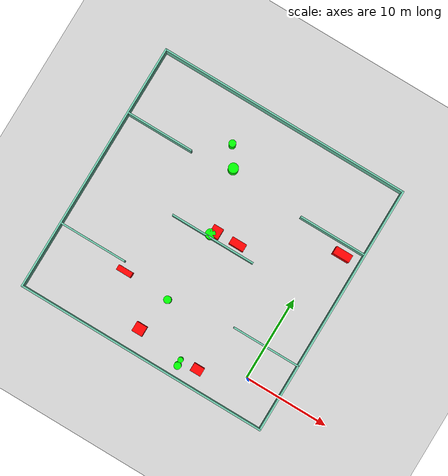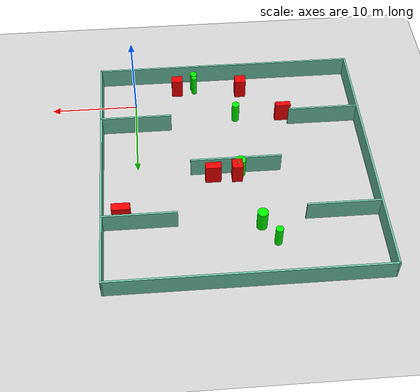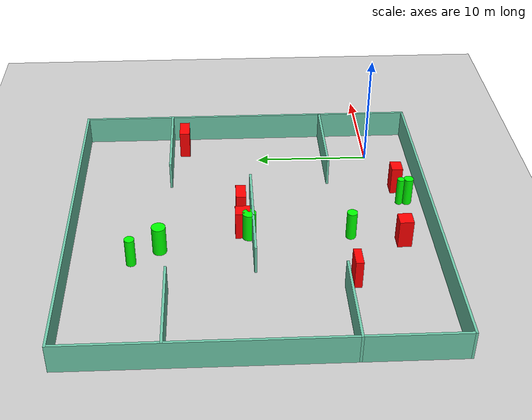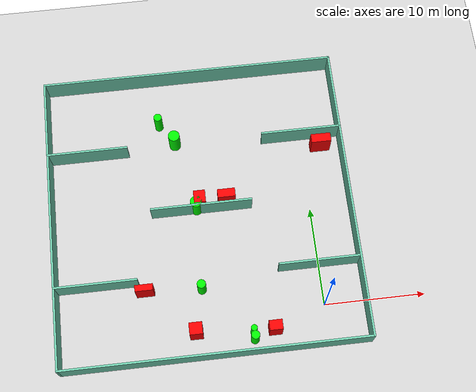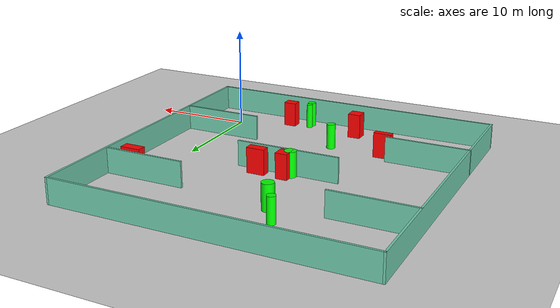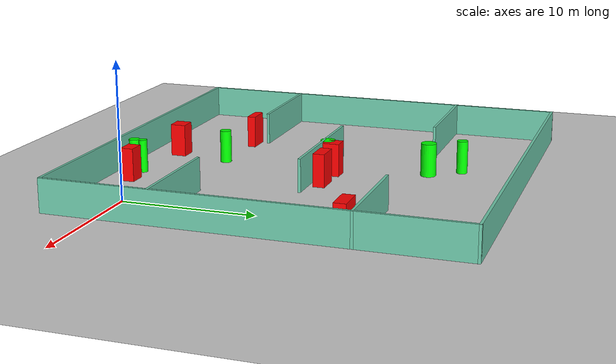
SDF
<sdf version="1.7">
 <world name="default">
  <light name="sun" type="directional">
   <pose>0 0 10 0 -0 0</pose>
   <diffuse>0.8 0.8 0.8 1</diffuse>
   <specular>0.2 0.2 0.2 1</specular>
   <attenuation>
    <range>1000</range>
    <constant>0.9</constant>
    <linear>0.01</linear>
    <quadratic>0.001</quadratic>
   </attenuation>
   <direction>-0.5 0.1 -0.9</direction>
   <spot><inner_angle>0</inner_angle><outer_angle>0</outer_angle><falloff>0</falloff></spot>
  </light>
  <model name="ground_plane">
   <static>1</static>
   <link name="link">
    <collision name="collision">
     <geometry><plane><normal>0 0 1</normal><size>100 100</size></plane></geometry>
     <surface>
      <contact><collide_bitmask>65535</collide_bitmask></contact>
      <friction><ode><mu>100</mu><mu2>50</mu2></ode></friction>
     </surface>
    </collision>
    <visual name="visual">
     <cast_shadows>0</cast_shadows>
     <geometry><plane><normal>0 0 1</normal><size>100 100</size></plane></geometry>
     <material>
      <script><uri>file://media/materials/scripts/gazebo.material</uri><name>Gazebo/Grey</name></script>
     </material>
    </visual>
   </link>
  </model>
  <gravity>0 0 -9.8</gravity>
  <magnetic_field>6e-06 2.3e-05 -4.2e-05</magnetic_field>
  <atmosphere type="adiabatic"/>
  <physics type="ode">
   <max_step_size>0.001</max_step_size>
   <real_time_factor>1</real_time_factor>
   <real_time_update_rate>1000</real_time_update_rate>
  </physics>
  <scene><ambient>0.4 0.4 0.4 1</ambient><background>0.7 0.7 0.7 1</background><shadows>1</shadows></scene>
  <spherical_coordinates>
   <surface_model>EARTH_WGS84</surface_model>
   <latitude_deg>0</latitude_deg>
   <longitude_deg>0</longitude_deg>
   <elevation>0</elevation>
   <heading_deg>0</heading_deg>
  </spherical_coordinates>
  <model name="my_base_walls">
   <link name="Wall_10">
    <collision name="Wall_10_Collision">
     <geometry><box><size>8.2 0.2 2.5</size></box></geometry>
     <pose>0 0 1.25 0 -0 0</pose>
    </collision>
    <visual name="Wall_10_Visual">
     <pose>0 0 1.25 0 -0 0</pose>
     <geometry><box><size>8.2 0.2 2.5</size></box></geometry>
     <material>
      <script><uri>file://media/materials/scripts/gazebo.material</uri><name>Gazebo/Grey</name></script>
      <ambient>0.435294 0.796078 0.67451 1</ambient>
     </material>
     <meta><layer>0</layer></meta>
    </visual>
    <pose>-11 -7 0 0 -0 0</pose>
   </link>
   <link name="Wall_12">
    <collision name="Wall_12_Collision">
     <geometry><box><size>8.2 0.2 2.5</size></box></geometry>
     <pose>0 0 1.25 0 -0 0</pose>
    </collision>
    <visual name="Wall_12_Visual">
     <pose>0 0 1.25 0 -0 0</pose>
     <geometry><box><size>8.2 0.2 2.5</size></box></geometry>
     <material>
      <script><uri>file://media/materials/scripts/gazebo.material</uri><name>Gazebo/Grey</name></script>
      <ambient>0.435294 0.796078 0.67451 1</ambient>
     </material>
     <meta><layer>0</layer></meta>
    </visual>
    <pose>-11 7 0 0 -0 0</pose>
   </link>
   <link name="Wall_14">
    <collision name="Wall_14_Collision">
     <geometry><box><size>8.2 0.2 2.5</size></box></geometry>
     <pose>0 0 1.25 0 -0 0</pose>
    </collision>
    <visual name="Wall_14_Visual">
     <pose>0 0 1.25 0 -0 0</pose>
     <geometry><box><size>8.2 0.2 2.5</size></box></geometry>
     <material>
      <script><uri>file://media/materials/scripts/gazebo.material</uri><name>Gazebo/Grey</name></script>
      <ambient>0.435294 0.796078 0.67451 1</ambient>
     </material>
     <meta><layer>0</layer></meta>
    </visual>
    <pose>11 7 0 0 -0 3.14159</pose>
   </link>
   <link name="Wall_16">
    <collision name="Wall_16_Collision">
     <geometry><box><size>10.2 0.2 2.5</size></box></geometry>
     <pose>0 0 1.25 0 -0 0</pose>
    </collision>
    <visual name="Wall_16_Visual">
     <pose>0 0 1.25 0 -0 0</pose>
     <geometry><box><size>10.2 0.2 2.5</size></box></geometry>
     <material>
      <script><uri>file://media/materials/scripts/gazebo.material</uri><name>Gazebo/Grey</name></script>
      <ambient>0.435294 0.796078 0.67451 1</ambient>
     </material>
     <meta><layer>0</layer></meta>
    </visual>
    <pose>0 0 0 0 -0 3.14159</pose>
   </link>
   <link name="Wall_2">
    <collision name="Wall_2_Collision">
     <geometry><box><size>30.2 0.2 2.5</size></box></geometry>
     <pose>0 0 1.25 0 -0 0</pose>
    </collision>
    <visual name="Wall_2_Visual">
     <pose>0 0 1.25 0 -0 0</pose>
     <geometry><box><size>30.2 0.2 2.5</size></box></geometry>
     <material>
      <script><uri>file://media/materials/scripts/gazebo.material</uri><name>Gazebo/Grey</name></script>
      <ambient>0.435294 0.796078 0.67451 1</ambient>
     </material>
     <meta><layer>0</layer></meta>
    </visual>
    <pose>0 -15 0 0 -0 3.14159</pose>
   </link>
   <link name="Wall_3">
    <collision name="Wall_3_Collision">
     <geometry><box><size>30.2 0.2 2.5</size></box></geometry>
     <pose>0 0 1.25 0 -0 0</pose>
    </collision>
    <visual name="Wall_3_Visual">
     <pose>0 0 1.25 0 -0 0</pose>
     <geometry><box><size>30.2 0.2 2.5</size></box></geometry>
     <material>
      <script><uri>file://media/materials/scripts/gazebo.material</uri><name>Gazebo/Grey</name></script>
      <ambient>0.435294 0.796078 0.67451 1</ambient>
     </material>
     <meta><layer>0</layer></meta>
    </visual>
    <pose>-15 0 0 0 -0 1.5708</pose>
   </link>
   <link name="Wall_4">
    <collision name="Wall_4_Collision">
     <geometry><box><size>30.2 0.2 2.5</size></box></geometry>
     <pose>0 0 1.25 0 -0 0</pose>
    </collision>
    <visual name="Wall_4_Visual">
     <pose>0 0 1.25 0 -0 0</pose>
     <geometry><box><size>30.2 0.2 2.5</size></box></geometry>
     <material>
      <script><uri>file://media/materials/scripts/gazebo.material</uri><name>Gazebo/Grey</name></script>
      <ambient>0.435294 0.796078 0.67451 1</ambient>
     </material>
     <meta><layer>0</layer></meta>
    </visual>
    <pose>0 15 0 0 -0 0</pose>
   </link>
   <link name="Wall_6">
    <collision name="Wall_6_Collision">
     <geometry><box><size>30.2 0.2 2.5</size></box></geometry>
     <pose>0 0 1.25 0 -0 0</pose>
    </collision>
    <visual name="Wall_6_Visual">
     <pose>0 0 1.25 0 -0 0</pose>
     <geometry><box><size>30.2 0.2 2.5</size></box></geometry>
     <material>
      <script><uri>file://media/materials/scripts/gazebo.material</uri><name>Gazebo/Grey</name></script>
      <ambient>0.435294 0.796078 0.67451 1</ambient>
     </material>
     <meta><layer>0</layer></meta>
    </visual>
    <pose>15 0 0 0 -0 1.5708</pose>
   </link>
   <link name="Wall_8">
    <collision name="Wall_8_Collision">
     <geometry><box><size>8.2 0.2 2.5</size></box></geometry>
     <pose>0 0 1.25 0 -0 0</pose>
    </collision>
    <visual name="Wall_8_Visual">
     <pose>0 0 1.25 0 -0 0</pose>
     <geometry><box><size>8.2 0.2 2.5</size></box></geometry>
     <material>
      <script><uri>file://media/materials/scripts/gazebo.material</uri><name>Gazebo/Grey</name></script>
      <ambient>0.435294 0.796078 0.67451 1</ambient>
     </material>
     <meta><layer>0</layer></meta>
    </visual>
    <pose>11 -7 0 0 -0 3.14159</pose>
   </link>
   <static>1</static>
   <pose>-11 11 0 0 -0 0</pose>
  </model>
  <model name="cylinder1">
   <static>1</static>
   <link name="link">
    <inertial>
     <mass>1</mass>
     <inertia><ixx>0.5</ixx><ixy>0</ixy><ixz>0</ixz><iyy>0.5</iyy><iyz>0</iyz><izz>1</izz></inertia>
    </inertial>
    <collision name="collision">
     <geometry><cylinder><radius>0.4140854216565222</radius><length>2.5</length></cylinder></geometry>
    </collision>
    <visual name="visual">
     <geometry><cylinder><radius>0.4140854216565222</radius><length>2.5</length></cylinder></geometry>
     <material>
      <ambient>0 1 0 1</ambient>
      <diffuse>0 1 0 1</diffuse>
      <specular>0.1 0.1 0.1 1</specular>
      <emissive>0 0 0 0</emissive>
     </material>
    </visual>
   </link>
   <pose>-7.172922751105473 -2.6689066918241835 1.25 0 0 0</pose>
  </model>
  <model name="cylinder2">
   <static>1</static>
   <link name="link">
    <inertial>
     <mass>1</mass>
     <inertia><ixx>0.5</ixx><ixy>0</ixy><ixz>0</ixz><iyy>0.5</iyy><iyz>0</iyz><izz>1</izz></inertia>
    </inertial>
    <collision name="collision">
     <geometry><cylinder><radius>0.4349386864884315</radius><length>2.5</length></cylinder></geometry>
    </collision>
    <visual name="visual">
     <geometry><cylinder><radius>0.4349386864884315</radius><length>2.5</length></cylinder></geometry>
     <material>
      <ambient>0 1 0 1</ambient>
      <diffuse>0 1 0 1</diffuse>
      <specular>0.1 0.1 0.1 1</specular>
      <emissive>0 0 0 0</emissive>
     </material>
    </visual>
   </link>
   <pose>-11.788112548633322 2.84122654606698 1.25 0 0 0</pose>
  </model>
  <model name="cylinder3">
   <static>1</static>
   <link name="link">
    <inertial>
     <mass>1</mass>
     <inertia><ixx>0.5</ixx><ixy>0</ixy><ixz>0</ixz><iyy>0.5</iyy><iyz>0</iyz><izz>1</izz></inertia>
    </inertial>
    <collision name="collision">
     <geometry><cylinder><radius>0.5845623496380219</radius><length>2.5</length></cylinder></geometry>
    </collision>
    <visual name="visual">
     <geometry><cylinder><radius>0.5845623496380219</radius><length>2.5</length></cylinder></geometry>
     <material>
      <ambient>0 1 0 1</ambient>
      <diffuse>0 1 0 1</diffuse>
      <specular>0.1 0.1 0.1 1</specular>
      <emissive>0 0 0 0</emissive>
     </material>
    </visual>
   </link>
   <pose>-13.060700626432762 18.71928229952089 1.25 0 0 0</pose>
  </model>
  <model name="cylinder4">
   <static>1</static>
   <link name="link">
    <inertial>
     <mass>1</mass>
     <inertia><ixx>0.5</ixx><ixy>0</ixy><ixz>0</ixz><iyy>0.5</iyy><iyz>0</iyz><izz>1</izz></inertia>
    </inertial>
    <collision name="collision">
     <geometry><cylinder><radius>0.5801653613666091</radius><length>2.5</length></cylinder></geometry>
    </collision>
    <visual name="visual">
     <geometry><cylinder><radius>0.5801653613666091</radius><length>2.5</length></cylinder></geometry>
     <material>
      <ambient>0 1 0 1</ambient>
      <diffuse>0 1 0 1</diffuse>
      <specular>0.1 0.1 0.1 1</specular>
      <emissive>0 0 0 0</emissive>
     </material>
    </visual>
   </link>
   <pose>-11.492175057658338 11.326770152119005 1.25 0 0 0</pose>
  </model>
  <model name="cylinder5">
   <static>1</static>
   <link name="link">
    <inertial>
     <mass>1</mass>
     <inertia><ixx>0.5</ixx><ixy>0</ixy><ixz>0</ixz><iyy>0.5</iyy><iyz>0</iyz><izz>1</izz></inertia>
    </inertial>
    <collision name="collision">
     <geometry><cylinder><radius>0.31015047729211465</radius><length>2.5</length></cylinder></geometry>
    </collision>
    <visual name="visual">
     <geometry><cylinder><radius>0.31015047729211465</radius><length>2.5</length></cylinder></geometry>
     <material>
      <ambient>0 1 0 1</ambient>
      <diffuse>0 1 0 1</diffuse>
      <specular>0.1 0.1 0.1 1</specular>
      <emissive>0 0 0 0</emissive>
     </material>
    </visual>
   </link>
   <pose>-7.221960052732735 -1.97994859176359 1.25 0 0 0</pose>
  </model>
  <model name="cylinder6">
   <static>1</static>
   <link name="link">
    <inertial>
     <mass>1</mass>
     <inertia><ixx>0.5</ixx><ixy>0</ixy><ixz>0</ixz><iyy>0.5</iyy><iyz>0</iyz><izz>1</izz></inertia>
    </inertial>
    <collision name="collision">
     <geometry><cylinder><radius>0.4101775855152839</radius><length>2.5</length></cylinder></geometry>
    </collision>
    <visual name="visual">
     <geometry><cylinder><radius>0.4101775855152839</radius><length>2.5</length></cylinder></geometry>
     <material>
      <ambient>0 1 0 1</ambient>
      <diffuse>0 1 0 1</diffuse>
      <specular>0.1 0.1 0.1 1</specular>
      <emissive>0 0 0 0</emissive>
     </material>
    </visual>
   </link>
   <pose>-14.53571613356981 20.968477484564374 1.25 0 0 0</pose>
  </model>
  <model name="box1">
   <static>1</static>
   <link name="link">
    <inertial>
     <mass>1</mass>
     <inertia><ixx>0.083</ixx><ixy>0</ixy><ixz>0</ixz><iyy>0.083</iyy><iyz>0</iyz><izz>0.083</izz></inertia>
    </inertial>
    <collision name="collision">
     <geometry><box><size>2.007037826054974 0.8953696531921308 2.5</size></box></geometry>
    </collision>
    <visual name="visual">
     <geometry><box><size>2.007037826054974 0.8953696531921308 2.5</size></box></geometry>
     <material>
      <ambient>1 0 0 1</ambient>
      <diffuse>1 0 0 1</diffuse>
      <specular>0.1 0.1 0.1 1</specular>
      <emissive>0 0 0 0</emissive>
     </material>
    </visual>
    <sensor name="my_contact" type="contact">
     <contact><collision>box_collision</collision><topic>__default_topic__</topic></contact>
    </sensor>
   </link>
   <pose>1.911934878650392 16.836738092477106 1.25 0 0 0</pose>
  </model>
  <model name="box2">
   <static>1</static>
   <link name="link">
    <inertial>
     <mass>1</mass>
     <inertia><ixx>0.083</ixx><ixy>0</ixy><ixz>0</ixz><iyy>0.083</iyy><iyz>0</iyz><izz>0.083</izz></inertia>
    </inertial>
    <collision name="collision">
     <geometry><box><size>1.174209760916134 1.257702335467291 2.5</size></box></geometry>
    </collision>
    <visual name="visual">
     <geometry><box><size>1.174209760916134 1.257702335467291 2.5</size></box></geometry>
     <material>
      <ambient>1 0 0 1</ambient>
      <diffuse>1 0 0 1</diffuse>
      <specular>0.1 0.1 0.1 1</specular>
      <emissive>0 0 0 0</emissive>
     </material>
    </visual>
    <sensor name="my_contact" type="contact">
     <contact><collision>box_collision</collision><topic>__default_topic__</topic></contact>
    </sensor>
   </link>
   <pose>-11.08564655931329 11.847106684252818 1.25 0 0 0</pose>
  </model>
  <model name="box3">
   <static>1</static>
   <link name="link">
    <inertial>
     <mass>1</mass>
     <inertia><ixx>0.083</ixx><ixy>0</ixy><ixz>0</ixz><iyy>0.083</iyy><iyz>0</iyz><izz>0.083</izz></inertia>
    </inertial>
    <collision name="collision">
     <geometry><box><size>1.273556041045624 1.1824434904975403 2.5</size></box></geometry>
    </collision>
    <visual name="visual">
     <geometry><box><size>1.273556041045624 1.1824434904975403 2.5</size></box></geometry>
     <material>
      <ambient>1 0 0 1</ambient>
      <diffuse>1 0 0 1</diffuse>
      <specular>0.1 0.1 0.1 1</specular>
      <emissive>0 0 0 0</emissive>
     </material>
    </visual>
    <sensor name="my_contact" type="contact">
     <contact><collision>box_collision</collision><topic>__default_topic__</topic></contact>
    </sensor>
   </link>
   <pose>-12.739594950167326 -1.4109628731553205 1.25 0 0 0</pose>
  </model>
  <model name="box4">
   <static>1</static>
   <link name="link">
    <inertial>
     <mass>1</mass>
     <inertia><ixx>0.083</ixx><ixy>0</ixy><ixz>0</ixz><iyy>0.083</iyy><iyz>0</iyz><izz>0.083</izz></inertia>
    </inertial>
    <collision name="collision">
     <geometry><box><size>1.7607302346956106 0.6346448178153693 2.5</size></box></geometry>
    </collision>
    <visual name="visual">
     <geometry><box><size>1.7607302346956106 0.6346448178153693 2.5</size></box></geometry>
     <material>
      <ambient>1 0 0 1</ambient>
      <diffuse>1 0 0 1</diffuse>
      <specular>0.1 0.1 0.1 1</specular>
      <emissive>0 0 0 0</emissive>
     </material>
    </visual>
    <sensor name="my_contact" type="contact">
     <contact><collision>box_collision</collision><topic>__default_topic__</topic></contact>
    </sensor>
   </link>
   <pose>-17.346287354087682 3.0962296682609747 1.25 0 0 0</pose>
  </model>
  <model name="box5">
   <static>1</static>
   <link name="link">
    <inertial>
     <mass>1</mass>
     <inertia><ixx>0.083</ixx><ixy>0</ixy><ixz>0</ixz><iyy>0.083</iyy><iyz>0</iyz><izz>0.083</izz></inertia>
    </inertial>
    <collision name="collision">
     <geometry><box><size>1.2861169046817236 0.9689109822579361 2.5</size></box></geometry>
    </collision>
    <visual name="visual">
     <geometry><box><size>1.2861169046817236 0.9689109822579361 2.5</size></box></geometry>
     <material>
      <ambient>1 0 0 1</ambient>
      <diffuse>1 0 0 1</diffuse>
      <specular>0.1 0.1 0.1 1</specular>
      <emissive>0 0 0 0</emissive>
     </material>
    </visual>
    <sensor name="my_contact" type="contact">
     <contact><collision>box_collision</collision><topic>__default_topic__</topic></contact>
    </sensor>
   </link>
   <pose>-5.127867370894219 -1.9294520443099241 1.25 0 0 0</pose>
  </model>
  <model name="box6">
   <static>1</static>
   <link name="link">
    <inertial>
     <mass>1</mass>
     <inertia><ixx>0.083</ixx><ixy>0</ixy><ixz>0</ixz><iyy>0.083</iyy><iyz>0</iyz><izz>0.083</izz></inertia>
    </inertial>
    <collision name="collision">
     <geometry><box><size>1.7756773593061543 0.8644299582700581 2.5</size></box></geometry>
    </collision>
    <visual name="visual">
     <geometry><box><size>1.7756773593061543 0.8644299582700581 2.5</size></box></geometry>
     <material>
      <ambient>1 0 0 1</ambient>
      <diffuse>1 0 0 1</diffuse>
      <specular>0.1 0.1 0.1 1</specular>
      <emissive>0 0 0 0</emissive>
     </material>
    </visual>
    <sensor name="my_contact" type="contact">
     <contact><collision>box_collision</collision><topic>__default_topic__</topic></contact>
    </sensor>
   </link>
   <pose>-8.38074491852635 11.91759108941055 1.25 0 0 0</pose>
  </model>
 </world>
</sdf>
